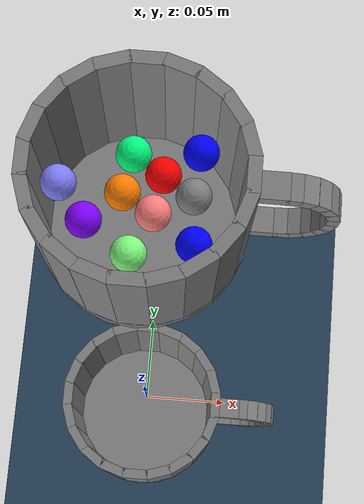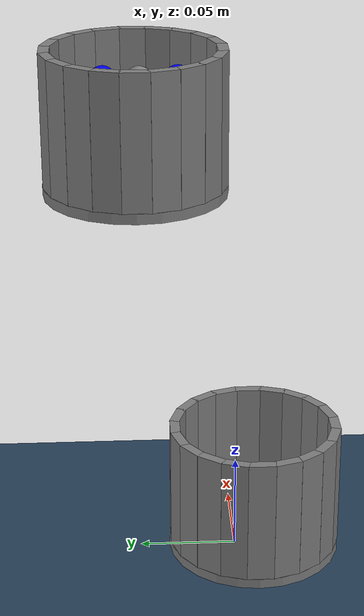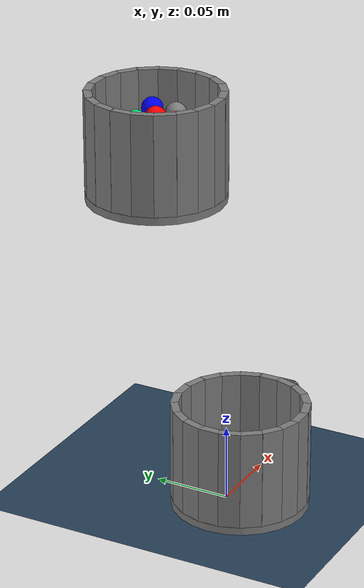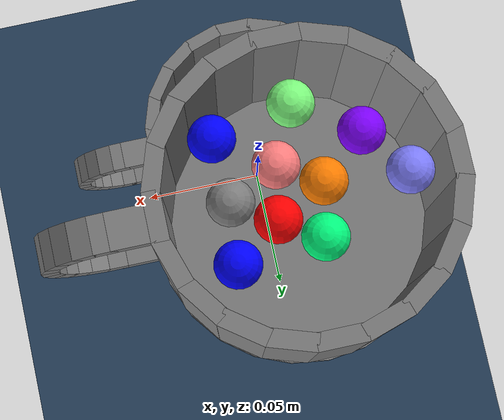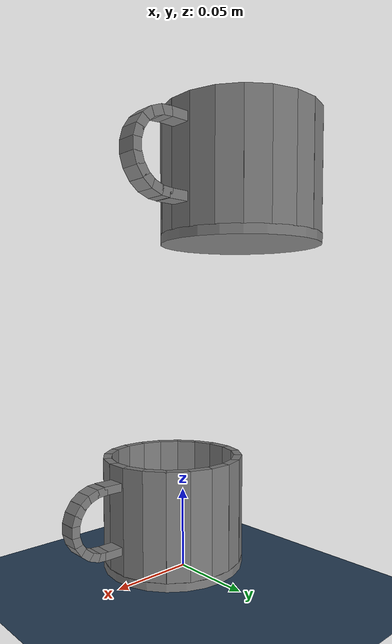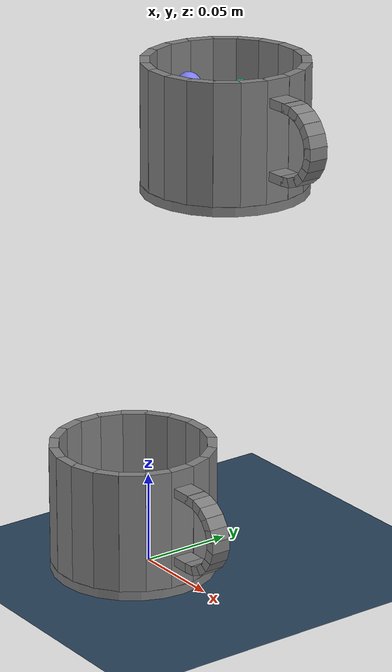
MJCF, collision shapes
<mujoco model="DRL Scene">

  <include file="mug.xml"/>

  <statistic center="0.2 0 0.4" extent=".65"/>

  <visual>
    <headlight diffuse="0.6 0.6 0.6" ambient="0.3 0.3 0.3" specular="0 0 0"/>
    <rgba haze="0.15 0.25 0.35 1"/>
    <global azimuth="150" elevation="-20"/>
  </visual>

  <asset>
    <texture type="skybox" builtin="gradient" rgb1="0.3 0.5 0.7" rgb2="0 0 0" width="512" height="3072"/>
    <texture type="2d" name="groundplane" builtin="checker" mark="edge" rgb1="0.2 0.3 0.4" rgb2="0.1 0.2 0.3"
      markrgb="0.8 0.8 0.8" width="300" height="300"/>
    <material name="groundplane" texture="groundplane" texuniform="true" texrepeat="5 5" reflectance="0.2"/>
  </asset>

  <worldbody>
    <light pos="0 0 1.5" dir="0 0 -1" directional="true"/>
    <geom name="floor" size="0 0 0.05" type="plane" material="groundplane"/>
  </worldbody>
</mujoco>

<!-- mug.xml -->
<mujoco model="mug">
  <visual>
    <headlight ambient="0 0 0" diffuse="0 0 0" specular="1 1 1"/>
    <quality shadowsize="8192"/>
  </visual>

  <asset>
    <material name="whiteMug" rgba="1 1 1 1"/>
    <material name="grayMug" rgba="0.753 0.753 0.753 1"/>
    <mesh file="mug.obj" scale=".01 .01 .01"/>
    <material name="floor" reflectance=".1"/>
  </asset>

  <default>
    <default class="collision">
      <geom type="box" group="3"/>
      <default class="cup">
        <geom size="0.0026 0.00704 0.033"/>
      </default>
      <default class="handle">
        <geom size="0.0025 0.00328 0.0055"/>
      </default>
    </default>
  </default>

  <worldbody>
    <body name="mug" pos="0 0.05 0.2">
      <joint axis="1 0 0" name="rotate_x" pos="0 0 0.05" type="hinge" range="0 180" damping="0.25"/>
      <geom type="mesh" mesh="mug" material="grayMug" euler="90 0 0" group="1" contype="0" conaffinity="0"/>
      <geom class="cup" pos="0.0418 0 0.038" euler="0 0 0"/>
      <geom class="cup" pos="0.0398 0.0129 0.038" euler="0 0 18"/>
      <geom class="cup" pos="0.0339 0.0246 0.038" euler="0 0 36"/>
      <geom class="cup" pos="0.0246 0.0339 0.038" euler="0 0 54"/>
      <geom class="cup" pos="0.0129 0.0398 0.038" euler="0 0 72"/>
      <geom class="cup" pos="0 0.0418 0.038" euler="0 0 90"/>
      <geom class="cup" pos="-0.0129 0.0398 0.038" euler="0 0 108"/>
      <geom class="cup" pos="-0.0246 0.0339 0.038" euler="0 0 126"/>
      <geom class="cup" pos="-0.0339 0.0246 0.038" euler="0 0 144"/>
      <geom class="cup" pos="-0.0398 0.0129 0.038" euler="0 0 162"/>
      <geom class="cup" pos="-0.0418 0 0.038" euler="0 0 180"/>
      <geom class="cup" pos="-0.0398 -0.0129 0.038" euler="0 0 198"/>
      <geom class="cup" pos="-0.0339 -0.0246 0.038" euler="0 0 216"/>
      <geom class="cup" pos="-0.0246 -0.0339 0.038" euler="0 0 234"/>
      <geom class="cup" pos="-0.0129 -0.0398 0.038" euler="0 0 252"/>
      <geom class="cup" pos="0 -0.0418 0.038" euler="0 0 270"/>
      <geom class="cup" pos="0.0129 -0.0398 0.038" euler="0 0 288"/>
      <geom class="cup" pos="0.0246 -0.0339 0.038" euler="0 0 306"/>
      <geom class="cup" pos="0.0339 -0.0246 0.038" euler="0 0 324"/>
      <geom class="cup" pos="0.0398 -0.0129 0.038" euler="0 0 342"/>
      <geom class="cup" type="cylinder" size="0.045 0.0026" pos="0 0 0.0026"/>
      <body name="handle" pos="0.056 0 0.0395" euler="90 0 0">
        <geom class="handle" pos="0.0193 0 0" euler="0 0 0"/>
        <geom class="handle" pos="0.0184 0.00568 0" euler="0 0 17.1"/>
        <geom class="handle" pos="0.0159 0.0108 0" euler="0 0 34.3"/>
        <geom class="handle" pos="0.012 0.0151 0" euler="0 0 51.4"/>
        <geom class="handle" pos="0.00703 0.0179 0" euler="0 0 68.6"/>
        <geom class="handle" pos="0.00144 0.0192 0" euler="0 0 85.7"/>
        <geom class="handle" pos="0.00144 -0.0192 0" euler="0 0 274"/>
        <geom class="handle" pos="0.00703 -0.0179 0" euler="0 0 291"/>
        <geom class="handle" pos="0.012 -0.0151 0" euler="0 0 309"/>
        <geom class="handle" pos="0.0159 -0.0108 0" euler="0 0 326"/>
        <geom class="handle" pos="0.0184 -0.00568 0" euler="0 0 343"/>
        <geom class="collision" size="0.007 0.0025 0.0055" pos="-0.007 -0.0195 0"/>
        <geom class="collision" size="0.007 0.0025 0.0055" pos="-0.007 0.0195 0"/>
      </body>
    </body>

    <body name="mugStatic" pos="0 -0.01 0">
      <geom type="mesh" mesh="mug" material="whiteMug" euler="90 0 0" group="1" contype="0" conaffinity="0"/>
      <geom class="cup" pos="0.0418 0 0.038" euler="0 0 0"/>
      <geom class="cup" pos="0.0398 0.0129 0.038" euler="0 0 18"/>
      <geom class="cup" pos="0.0339 0.0246 0.038" euler="0 0 36"/>
      <geom class="cup" pos="0.0246 0.0339 0.038" euler="0 0 54"/>
      <geom class="cup" pos="0.0129 0.0398 0.038" euler="0 0 72"/>
      <geom class="cup" pos="0 0.0418 0.038" euler="0 0 90"/>
      <geom class="cup" pos="-0.0129 0.0398 0.038" euler="0 0 108"/>
      <geom class="cup" pos="-0.0246 0.0339 0.038" euler="0 0 126"/>
      <geom class="cup" pos="-0.0339 0.0246 0.038" euler="0 0 144"/>
      <geom class="cup" pos="-0.0398 0.0129 0.038" euler="0 0 162"/>
      <geom class="cup" pos="-0.0418 0 0.038" euler="0 0 180"/>
      <geom class="cup" pos="-0.0398 -0.0129 0.038" euler="0 0 198"/>
      <geom class="cup" pos="-0.0339 -0.0246 0.038" euler="0 0 216"/>
      <geom class="cup" pos="-0.0246 -0.0339 0.038" euler="0 0 234"/>
      <geom class="cup" pos="-0.0129 -0.0398 0.038" euler="0 0 252"/>
      <geom class="cup" pos="0 -0.0418 0.038" euler="0 0 270"/>
      <geom class="cup" pos="0.0129 -0.0398 0.038" euler="0 0 288"/>
      <geom class="cup" pos="0.0246 -0.0339 0.038" euler="0 0 306"/>
      <geom class="cup" pos="0.0339 -0.0246 0.038" euler="0 0 324"/>
      <geom class="cup" pos="0.0398 -0.0129 0.038" euler="0 0 342"/>
      <geom class="cup" type="cylinder" size="0.045 0.0026" pos="0 0 0.0026"/>
      <body name="handleStatic" pos="0.056 0 0.0395" euler="90 0 0">
        <geom class="handle" pos="0.0193 0 0" euler="0 0 0"/>
        <geom class="handle" pos="0.0184 0.00568 0" euler="0 0 17.1"/>
        <geom class="handle" pos="0.0159 0.0108 0" euler="0 0 34.3"/>
        <geom class="handle" pos="0.012 0.0151 0" euler="0 0 51.4"/>
        <geom class="handle" pos="0.00703 0.0179 0" euler="0 0 68.6"/>
        <geom class="handle" pos="0.00144 0.0192 0" euler="0 0 85.7"/>
        <geom class="handle" pos="0.00144 -0.0192 0" euler="0 0 274"/>
        <geom class="handle" pos="0.00703 -0.0179 0" euler="0 0 291"/>
        <geom class="handle" pos="0.012 -0.0151 0" euler="0 0 309"/>
        <geom class="handle" pos="0.0159 -0.0108 0" euler="0 0 326"/>
        <geom class="handle" pos="0.0184 -0.00568 0" euler="0 0 343"/>
        <geom class="collision" size="0.007 0.0025 0.0055" pos="-0.007 -0.0195 0"/>
        <geom class="collision" size="0.007 0.0025 0.0055" pos="-0.007 0.0195 0"/>
      </body>
    </body>

    <body name="particle_0" pos="0.008660254037844387 0.054999999999999999 0.25">
      <freejoint />
      <geom name="particle_0" type="sphere" size="0.0070" rgba="1 0 0 1" solref=".005 1" mass="0.005" contype="1" conaffinity="1" friction="1 1 1" />
    </body>
    <body name="particle_1" pos="-0.006291558324094168 0.0469314019725 0.25">
      <freejoint />
      <geom name="particle_1" type="sphere" size="0.0070" rgba="1 .5 0 1" solref=".005 1" mass="0.005" contype="1" conaffinity="1" friction="1 1 1" />
    </body>
    <body name="particle_2" pos="0.006000000000000002 0.0396076951546 0.25">
      <freejoint />
      <geom name="particle_2" type="sphere" size="0.0070" rgba="1 .5 .5  1" solref=".005 1" mass="0.005" contype="1" conaffinity="1" friction="1 1 1" />
    </body>
    <body name="particle_3" pos="0.022299533810498175 0.0284655905158 0.25">
      <freejoint />
      <geom name="particle_3" type="sphere" size="0.0070" rgba="0 0 1 1" solref=".005 1" mass="0.005" contype="1" conaffinity="1" friction="1 1 1" />
    </body>
    <body name="particle_4" pos="-0.003364647586332771 0.062557035741757887 0.25">
      <freejoint />
      <geom name="particle_4" type="sphere" size="0.0070" rgba="0 1 .5 1" solref=".005 1" mass="0.005" contype="1" conaffinity="1" friction="1 1 1" />
    </body>
    <body name="particle_5" pos="-0.0018834247910913906 0.023065770643 0.25">
      <freejoint />
      <geom name="particle_5" type="sphere" size="0.0070" rgba=".5 1 .5 1" solref=".005 1" mass="0.005" contype="1" conaffinity="1" friction="1 1 1" />
    </body>
    <body name="particle_6" pos="0.022384014458986124 0.065098208393710167 0.25">
      <freejoint />
      <geom name="particle_6" type="sphere" size="0.0070" rgba=".0 0 1 1" solref=".005 1" mass="0.005" contype="1" conaffinity="1" friction="1 1 1" />
    </body>
    <body name="particle_7" pos="-0.019965887751182323 0.0349546244212 0.25">
      <freejoint />
      <geom name="particle_7" type="sphere" size="0.0070" rgba=".5 0 1 1" solref=".005 1" mass="0.005" contype="1" conaffinity="1" friction="1 1 1" />
    </body>
    <body name="particle_8" pos="-0.03098111563759197 0.0489181156022 0.25">
      <freejoint />
      <geom name="particle_8" type="sphere" size="0.0070" rgba=".5 .5 1 1" solref=".005 1" mass="0.005" contype="1" conaffinity="1" friction="1 1 1" />
    </body>
    <body name="particle_9" pos="0.020843469184467764 0.0474407437885 0.25">
      <freejoint />
      <geom name="particle_9" type="sphere" size="0.0070" rgba=".5 .5 .5 1" solref=".005 1" mass="0.005" contype="1" conaffinity="1" friction="1 1 1" />
    </body>
  </worldbody>

  <actuator>
      <motor name="rotate_x_motor" joint="rotate_x" ctrllimited="true" ctrlrange="-1.0 1.0" />
  </actuator>
</mujoco>
